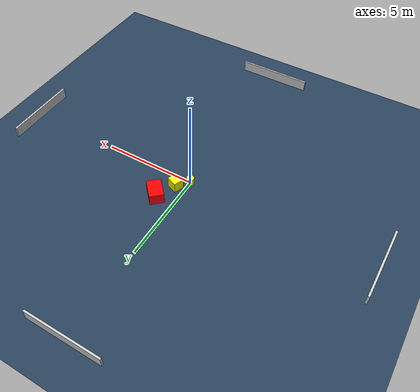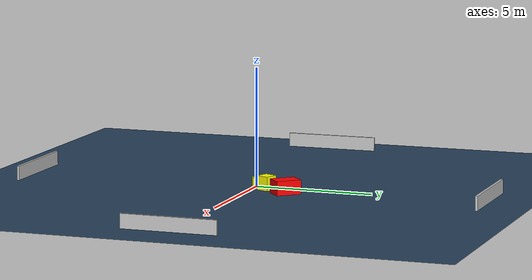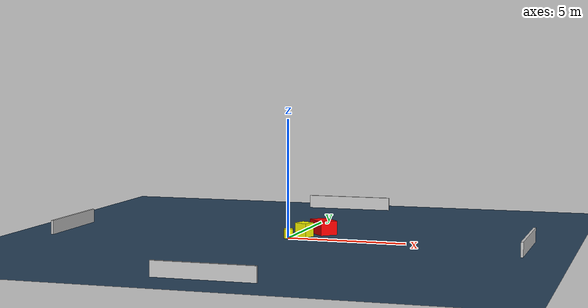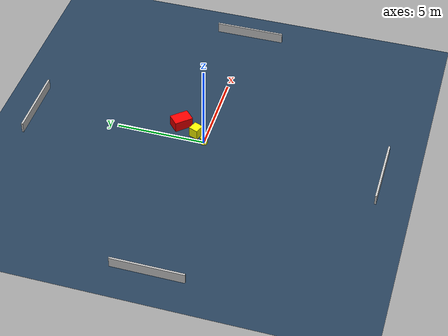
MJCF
<?xml version="1.0" ?>
<mujoco model="generated_environment">
  <option timestep="0.01" integrator="RK4" cone="elliptic"/>
  <default>
    <geom density="1"/>
  </default>
  <asset>
    <texture builtin="gradient" height="3072" name="skybox" rgb1="0.3 0.5 0.7" rgb2="0 0 0" type="skybox" width="512"/>
    <texture builtin="checker" height="300" name="groundplane" rgb1="0.2 0.3 0.4" rgb2="0.1 0.2 0.3" type="2d" width="300"/>
    <material name="groundplane" reflectance="0.2" texrepeat="5 5" texture="groundplane"/>
  </asset>
  <worldbody>
    <light dir="0 0 -1" directional="true" pos="0 0 1.5"/>
    <geom condim="3" friction="0.5 0.005 0.001" material="groundplane" name="floor" pos="0 0 0" size="0 0 0.05" type="plane"/>
    <body name="walls">
      <geom name="wall_1" condim="4" pos="-10.0 0.0 0.3" rgba="0.800000011920929 0.800000011920929 0.800000011920929 1.0" size="0.05 2.0 0.3" type="box"/>
      <geom name="wall_2" condim="4" pos="10.0 0.0 0.3" rgba="0.800000011920929 0.800000011920929 0.800000011920929 1.0" size="0.05 2.0 0.3" type="box"/>
      <geom name="wall_3" condim="4" pos="0.0 -10.0 0.3" rgba="0.800000011920929 0.800000011920929 0.800000011920929 1.0" size="2.0 0.05 0.3" type="box"/>
      <geom name="wall_4" condim="4" pos="0.0 10.0 0.3" rgba="0.800000011920929 0.800000011920929 0.800000011920929 1.0" size="2.0 0.05 0.3" type="box"/>
    </body>
    <body name="robot">
      <joint name="joint_x" type="slide" pos="0 0 0" axis="1 0 0"/>
      <joint name="joint_y" type="slide" pos="0 0 0" axis="0 1 0"/>
      <geom name="robot" type="cylinder" pos="0.0 0.0 0.2" size="0.2 0.2 0.0" mass="5.0" friction="1.0 0.005 0.0001" condim="4" rgba="1.0 1.0 0.0 1.0"/>
    </body>
    <body name="obstacle_1_movable">
      <geom name="obstacle_1_movable" condim="4" pos="0.5096223384466175 0.6095290164495413 0.3" euler="0 0 248.57464393519533" friction="0.0 0.005 0.001" rgba="1.0 1.0 0.0 1.0" size="0.2702111902542624 0.28217524719224274 0.3" type="box" mass="0.1"/>
      <joint type="free"/>
    </body>
    <body name="obstacle_2_static">
      <geom name="obstacle_2_static" condim="4" pos="1.0632442325324987 1.6348135665417214 0.3" euler="0 0 222.6005592847318" friction="0.0 0.005 0.001" rgba="1.0 0.0 0.0 1.0" size="0.37384619920553996 0.5322560331577664 0.3" type="box"/>
    </body>
  </worldbody>
  <actuator>
    <motor name="actuator_x" joint="joint_x" gear="1" ctrlrange="-1 1"/>
    <motor name="actuator_y" joint="joint_y" gear="1" ctrlrange="-1 1"/>
  </actuator>
</mujoco>
